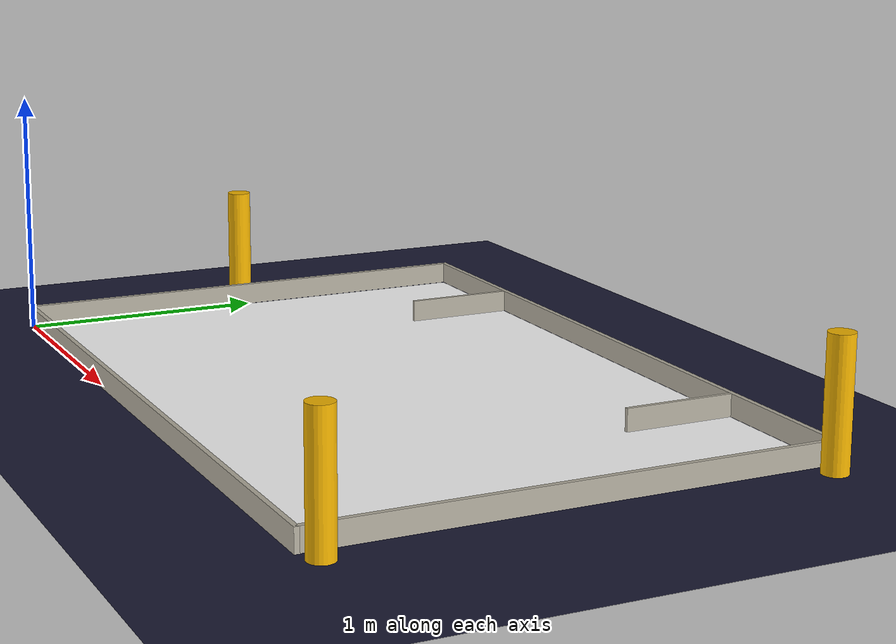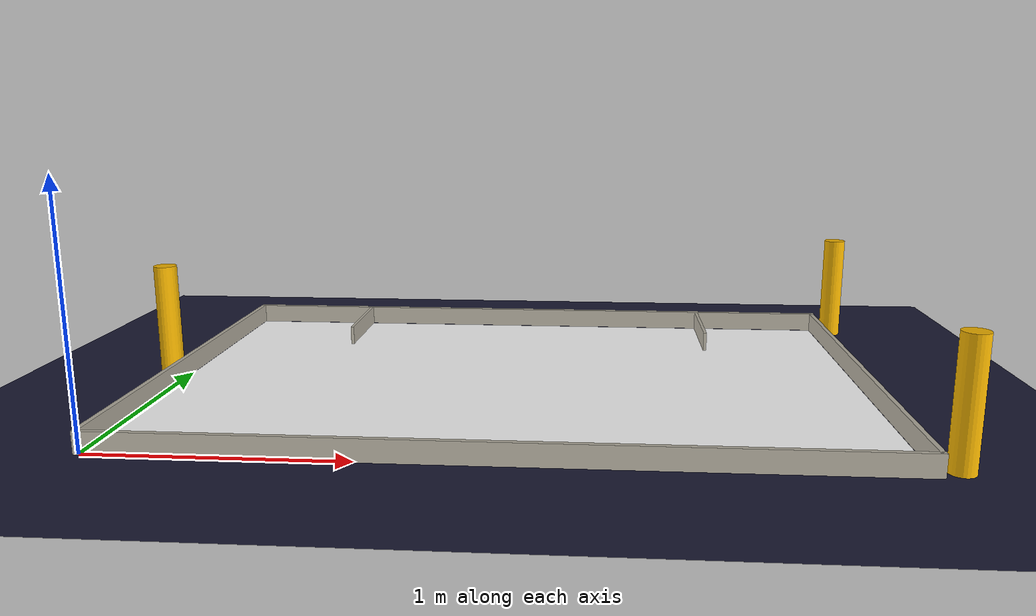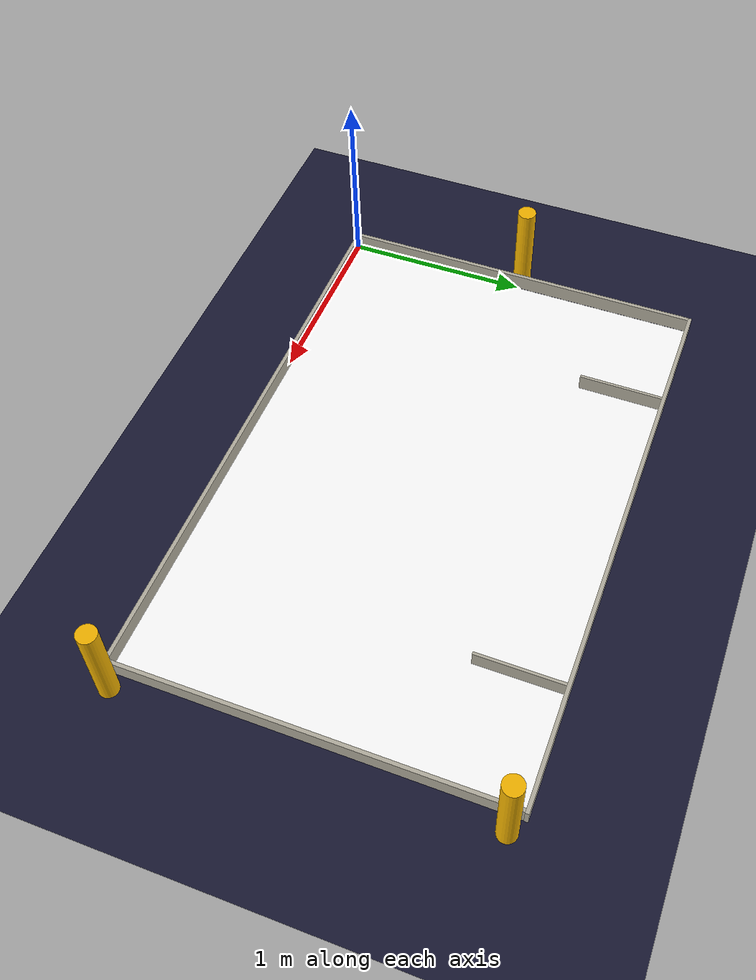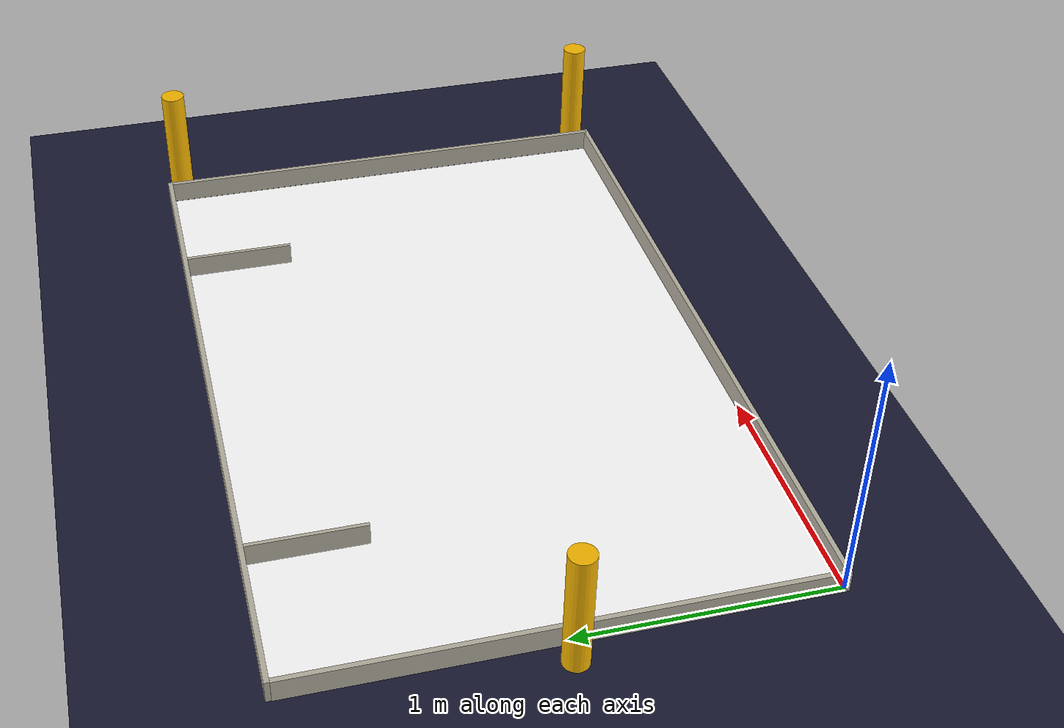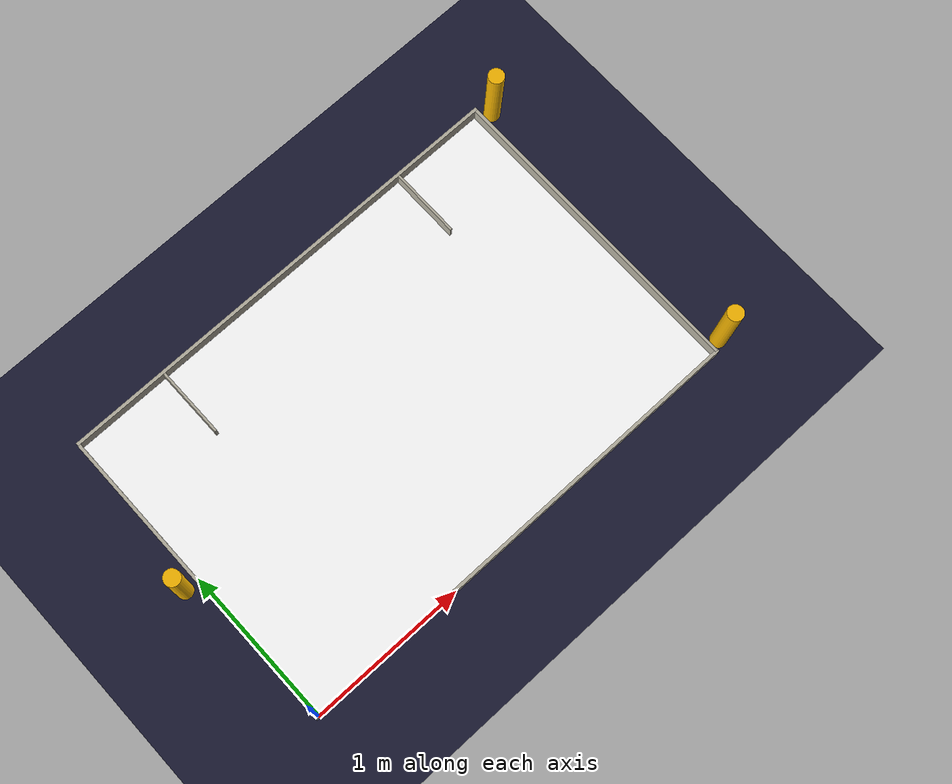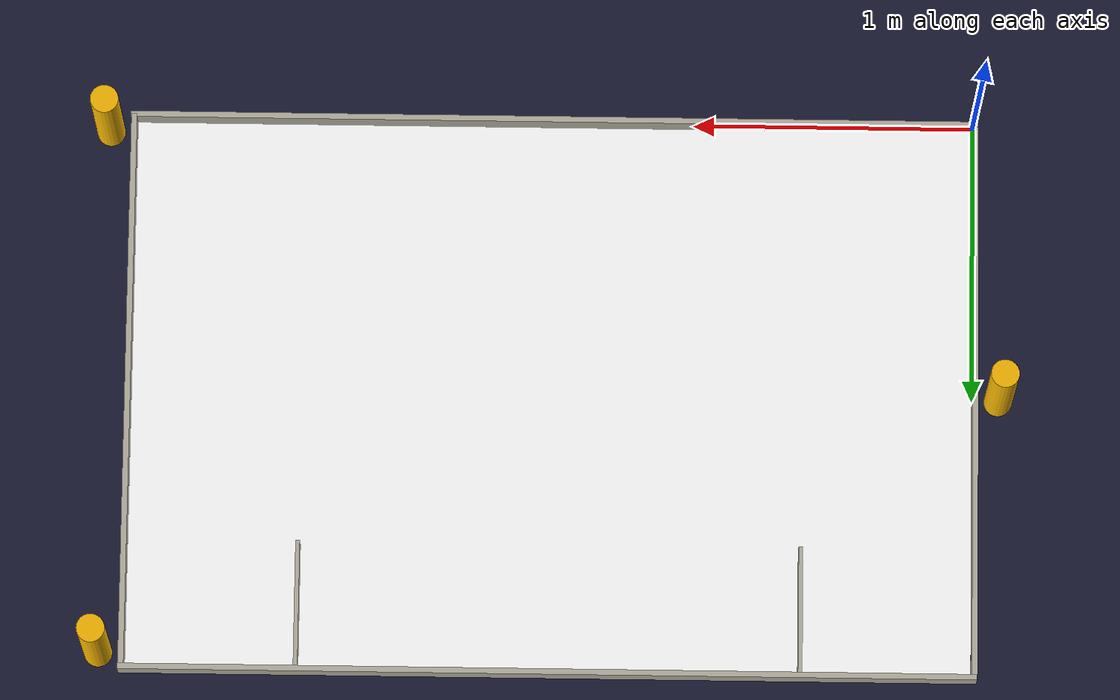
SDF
<sdf version="1.6">
 <world name="eurobot_2026">
  <physics name="default_physics" type="ode">
   <max_step_size>0.01</max_step_size>
   <real_time_update_rate>10</real_time_update_rate>
   <real_time_factor>1.0</real_time_factor>
  </physics>
  <scene><ambient>0.4 0.4 0.4 1</ambient><shadows>false</shadows></scene>
  <light type="directional" name="light1">
   <pose>1.5 1 50 0 0 0</pose>
   <diffuse>0.5 0.5 0.5 1</diffuse>
   <specular>1 1 1 0</specular>
   <direction>1 0 0.5</direction>
  </light>
  <light type="directional" name="light2">
   <pose>1.5 1 50 0 0 0</pose>
   <diffuse>0.5 0.5 0.5 1</diffuse>
   <specular>1 1 1 0</specular>
   <direction>1 0 -0.5</direction>
  </light>
  <model name="ground_plane">
   <static>true</static>
   <link name="ground_link">
    <collision name="collision1"><geometry><plane><normal>0 0 1</normal></plane></geometry></collision>
    <visual name="visual1">
     <geometry><plane><normal>0 0 1</normal><size>100 100</size></plane></geometry>
     <material>
      <ambient>0.1 0.1 0.1 0</ambient>
      <diffuse>0.1 0.1 0.2 0</diffuse>
      <specular>0 0 0 0</specular>
      <emissive>0 0 0 0</emissive>
     </material>
    </visual>
   </link>
  </model>
  <include>
   <name>playground</name>
   <uri>model://eurobot_playground_26</uri>
   <pose>1.5 1.0 -0.001 0 0 0</pose>
  </include>
  <model name="granary_wall_yellow">
   <static>true</static>
   <pose>0.6075 1.775 0.045 0 0 0</pose>
   <link name="body">
    <collision name="collision1"><geometry><box><size>0.015 0.45 0.09</size></box></geometry></collision>
    <visual name="visual1">
     <geometry><box><size>0.015 0.45 0.09</size></box></geometry>
     <material>
      <ambient>0.71 0.69 0.63 1.0</ambient>
      <diffuse>0.71 0.69 0.63 1.0</diffuse>
      <specular>0.1 0.1 0.1 1</specular>
      <emissive>0 0 0 0</emissive>
     </material>
    </visual>
   </link>
  </model>
  <model name="granary_wall_blue">
   <static>true</static>
   <pose>2.3925 1.775 0.045 0 0 0</pose>
   <link name="body">
    <collision name="collision1"><geometry><box><size>0.015 0.45 0.09</size></box></geometry></collision>
    <visual name="visual1">
     <geometry><box><size>0.015 0.45 0.09</size></box></geometry>
     <material>
      <ambient>0.71 0.69 0.63 1.0</ambient>
      <diffuse>0.71 0.69 0.63 1.0</diffuse>
      <specular>0.1 0.1 0.1 1</specular>
      <emissive>0 0 0 0</emissive>
     </material>
    </visual>
   </link>
  </model>
  <model name="landmark2">
   <pose>-0.094 1.0 0.25 0 0 0</pose>
   <static>true</static>
   <link name="link">
    <collision name="collision">
     <geometry><cylinder><length>0.5</length><radius>0.05</radius></cylinder></geometry>
     <laser_retro>20.0</laser_retro>
    </collision>
    <visual name="visual">
     <geometry><cylinder><length>0.5</length><radius>0.05</radius></cylinder></geometry>
     <material>
      <ambient>0.96 0.71 0.0 1</ambient>
      <diffuse>0.96 0.71 0.0 1</diffuse>
      <specular>0 0 0 0</specular>
      <emissive>0 0 0 0</emissive>
     </material>
    </visual>
   </link>
  </model>
  <model name="landmark4">
   <pose>3.094 0.05 0.25 0 0 0</pose>
   <static>true</static>
   <link name="link">
    <collision name="collision">
     <geometry><cylinder><length>0.5</length><radius>0.05</radius></cylinder></geometry>
     <laser_retro>40.0</laser_retro>
    </collision>
    <visual name="visual">
     <geometry><cylinder><length>0.5</length><radius>0.05</radius></cylinder></geometry>
     <material>
      <ambient>0.96 0.71 0.0 1</ambient>
      <diffuse>0.96 0.71 0.0 1</diffuse>
      <specular>0 0 0 0</specular>
      <emissive>0 0 0 0</emissive>
     </material>
    </visual>
   </link>
  </model>
  <model name="landmark6">
   <pose>3.094 1.95 0.25 0 0 0</pose>
   <static>true</static>
   <link name="link">
    <collision name="collision">
     <geometry><cylinder><length>0.5</length><radius>0.05</radius></cylinder></geometry>
     <laser_retro>60.0</laser_retro>
    </collision>
    <visual name="visual">
     <geometry><cylinder><length>0.5</length><radius>0.05</radius></cylinder></geometry>
     <material>
      <ambient>0.96 0.71 0.0 1</ambient>
      <diffuse>0.96 0.71 0.0 1</diffuse>
      <specular>0 0 0 0</specular>
      <emissive>0 0 0 0</emissive>
     </material>
    </visual>
   </link>
  </model>
  <model name="wall1">
   <static>true</static>
   <pose>1.502 0 0.045 0 0 0</pose>
   <link name="body">
    <collision name="collision1"><geometry><box><size>3.04 0.02 0.09</size></box></geometry></collision>
    <visual name="visual1">
     <geometry><box><size>3.04 0.02 0.09</size></box></geometry>
     <material>
      <ambient>0.71 0.69 0.63 1.0</ambient>
      <diffuse>0.71 0.69 0.63 1.0</diffuse>
      <specular>0.1 0.1 0.1 1</specular>
      <emissive>0 0 0 0</emissive>
     </material>
    </visual>
   </link>
  </model>
  <model name="wall2">
   <static>true</static>
   <pose>1.502 2.01 0.045 0 0 0</pose>
   <link name="body">
    <collision name="collision1"><geometry><box><size>3.04 0.02 0.09</size></box></geometry></collision>
    <visual name="visual1">
     <geometry><box><size>3.04 0.02 0.09</size></box></geometry>
     <material>
      <ambient>0.71 0.69 0.63 1.0</ambient>
      <diffuse>0.71 0.69 0.63 1.0</diffuse>
      <specular>0.1 0.1 0.1 1</specular>
      <emissive>0 0 0 0</emissive>
     </material>
    </visual>
   </link>
  </model>
  <model name="wall3">
   <static>true</static>
   <pose>3.01 1.0 0.045 0 0 0</pose>
   <link name="body">
    <collision name="collision1"><geometry><box><size>0.02 2.0 0.09</size></box></geometry></collision>
    <visual name="visual1">
     <geometry><box><size>0.02 2 0.09</size></box></geometry>
     <material>
      <ambient>0.71 0.69 0.63 1.0</ambient>
      <diffuse>0.71 0.69 0.63 1.0</diffuse>
      <specular>0.1 0.1 0.1 1</specular>
      <emissive>0 0 0 0</emissive>
     </material>
    </visual>
   </link>
  </model>
  <model name="wall4">
   <static>true</static>
   <pose>-0.01 1.0 0.045 0 0 0</pose>
   <link name="body">
    <collision name="collision1"><geometry><box><size>0.02 2.0 0.09</size></box></geometry></collision>
    <visual name="visual1">
     <geometry><box><size>0.02 2 0.09</size></box></geometry>
     <material>
      <ambient>0.71 0.69 0.63 1.0</ambient>
      <diffuse>0.71 0.69 0.63 1.0</diffuse>
      <specular>0.1 0.1 0.1 1</specular>
      <emissive>0 0 0 0</emissive>
     </material>
    </visual>
   </link>
  </model>
 </world>
</sdf>

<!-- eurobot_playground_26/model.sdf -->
<sdf version="1.6">
  <model name="Eurobot Playground Model">
    <static>true</static>
  <link name="plane">
      <collision name="plane_collision">
        <geometry>
          <box>
            <size>3 2 0.0001</size>
          </box>
        </geometry>
      </collision>
      <visual name="plane_visual">
        <geometry>
          <box>
            <size>3 2 0.0001</size>
          </box>
        </geometry>
        <material>
          <ambient>1 1 1 1</ambient>
          <diffuse>1 1 1 1</diffuse>
          <specular>0.1 0.1 0.1 1</specular>
          <pbr>
            <metal>
              <albedo_map>materials/textures/vinyle_table_2026_large.png</albedo_map>
              <roughness>1.0</roughness>
              <metalness>0.0</metalness>
            </metal>
          </pbr>
        </material>
      </visual>
    </link>

  </model>
</sdf>
